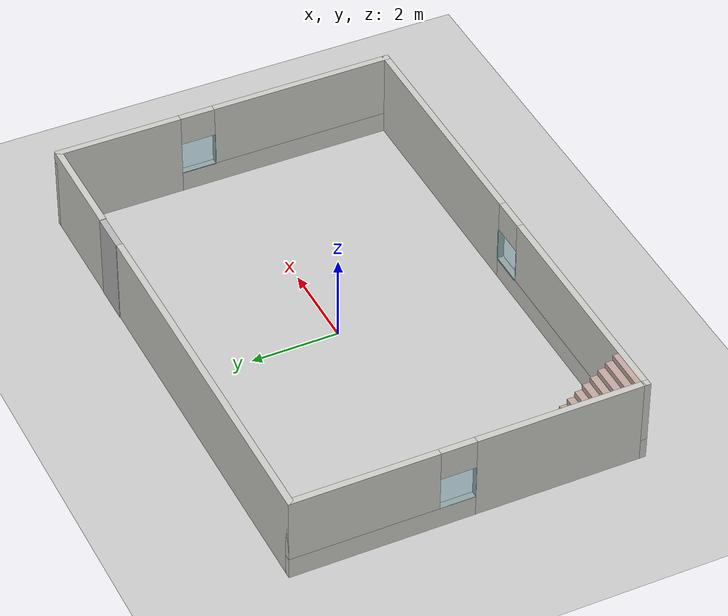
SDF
<sdf version="1.7">
 <world name="default">
  <plugin name="xbot2_clock" filename="libxbot2_gz_clock.so"/>
  <gravity>0 0 -9.81</gravity>
  <model name="ground_plane">
   <static>1</static>
   <link name="link">
    <collision name="collision">
     <geometry><plane><normal>0 0 1</normal><size>100 100</size></plane></geometry>
     <surface><friction><ode><mu>1</mu><mu2>1</mu2></ode></friction></surface>
    </collision>
    <visual name="visual">
     <cast_shadows>0</cast_shadows>
     <geometry><plane><normal>0 0 1</normal><size>100 100</size></plane></geometry>
     <material>
      <script><uri>file://media/materials/scripts/gazebo.material</uri><name>Gazebo/Grey</name></script>
     </material>
    </visual>
   </link>
  </model>
  <light name="sun" type="directional">
   <pose>0 0 10 0 -0 0</pose>
   <diffuse>0.8 0.8 0.8 1</diffuse>
   <specular>0.2 0.2 0.2 1</specular>
   <attenuation>
    <range>1000</range>
    <constant>0.9</constant>
    <linear>0.01</linear>
    <quadratic>0.001</quadratic>
   </attenuation>
   <direction>-0.5 0.1 -0.9</direction>
   <spot><inner_angle>0</inner_angle><outer_angle>0</outer_angle><falloff>0</falloff></spot>
  </light>
  <physics name="update_rate" type="ode">
   <real_time_update_rate>2000</real_time_update_rate>
   <max_step_size>0.00025</max_step_size>
   <max_contacts>5</max_contacts>
   <bullet>
    <solver><iters>100</iters><sor>1.55</sor><type>sequential_impulse</type></solver>
    <constraints>
     <contact_surface_layer>0.2</contact_surface_layer>
     <cfm>0.005</cfm>
     <erp>0.2</erp>
     <split_impulse>1</split_impulse>
     <split_impulse_penetration_threshold>-0.01</split_impulse_penetration_threshold>
    </constraints>
   </bullet>
   <ode>
    <solver>
     <iters>50</iters>
     <sor>1.2</sor>
     <type>quick</type>
     <use_dynamic_moi_rescaling>0</use_dynamic_moi_rescaling>
    </solver>
    <constraints>
     <contact_surface_layer>0.0002</contact_surface_layer>
     <contact_max_correcting_vel>500</contact_max_correcting_vel>
     <cfm>1e-06</cfm>
     <erp>0.3</erp>
    </constraints>
   </ode>
   <real_time_factor>1</real_time_factor>
  </physics>
  <magnetic_field>6e-06 2.3e-05 -4.2e-05</magnetic_field>
  <atmosphere type="adiabatic"/>
  <scene><ambient>0.4 0.4 0.4 1</ambient><background>0.7 0.7 0.7 1</background><shadows>1</shadows></scene>
  <spherical_coordinates>
   <surface_model>EARTH_WGS84</surface_model>
   <latitude_deg>0</latitude_deg>
   <longitude_deg>0</longitude_deg>
   <elevation>0</elevation>
   <heading_deg>0</heading_deg>
  </spherical_coordinates>
  <model name="room3">
   <pose>-0.063361 -0.045319 0 0 -0 0</pose>
   <link name="Stairs_0">
    <visual name="Stairs_0_Visual_0">
     <pose>-5.38821 -1.44096 0.066667 0 -0 0</pose>
     <geometry><box><size>0.930608 0.1686 0.133333</size></box></geometry>
     <material>
      <script><uri>file://media/materials/scripts/gazebo.material</uri><name>Gazebo/Grey</name></script>
      <ambient>0.760784 0.662745 0.627451 1</ambient>
     </material>
     <meta><layer>0</layer></meta>
    </visual>
    <collision name="Stairs_0_Collision_0">
     <geometry><box><size>0.930608 0.1686 0.133333</size></box></geometry>
     <pose>-5.38821 -1.44096 0.066667 0 -0 0</pose>
    </collision>
    <visual name="Stairs_0_Visual_1">
     <pose>-5.38821 -1.60956 0.2 0 -0 0</pose>
     <geometry><box><size>0.930608 0.1686 0.133333</size></box></geometry>
     <material>
      <script><uri>file://media/materials/scripts/gazebo.material</uri><name>Gazebo/Grey</name></script>
      <ambient>0.760784 0.662745 0.627451 1</ambient>
     </material>
     <meta><layer>0</layer></meta>
    </visual>
    <collision name="Stairs_0_Collision_1">
     <geometry><box><size>0.930608 0.1686 0.133333</size></box></geometry>
     <pose>-5.38821 -1.60956 0.2 0 -0 0</pose>
    </collision>
    <visual name="Stairs_0_Visual_2">
     <pose>-5.38821 -1.77816 0.333333 0 -0 0</pose>
     <geometry><box><size>0.930608 0.1686 0.133333</size></box></geometry>
     <material>
      <script><uri>file://media/materials/scripts/gazebo.material</uri><name>Gazebo/Grey</name></script>
      <ambient>0.760784 0.662745 0.627451 1</ambient>
     </material>
     <meta><layer>0</layer></meta>
    </visual>
    <collision name="Stairs_0_Collision_2">
     <geometry><box><size>0.930608 0.1686 0.133333</size></box></geometry>
     <pose>-5.38821 -1.77816 0.333333 0 -0 0</pose>
    </collision>
    <visual name="Stairs_0_Visual_3">
     <pose>-5.38821 -1.94676 0.466667 0 -0 0</pose>
     <geometry><box><size>0.930608 0.1686 0.133333</size></box></geometry>
     <material>
      <script><uri>file://media/materials/scripts/gazebo.material</uri><name>Gazebo/Grey</name></script>
      <ambient>0.760784 0.662745 0.627451 1</ambient>
     </material>
     <meta><layer>0</layer></meta>
    </visual>
    <collision name="Stairs_0_Collision_3">
     <geometry><box><size>0.930608 0.1686 0.133333</size></box></geometry>
     <pose>-5.38821 -1.94676 0.466667 0 -0 0</pose>
    </collision>
    <visual name="Stairs_0_Visual_4">
     <pose>-5.38821 -2.11536 0.6 0 -0 0</pose>
     <geometry><box><size>0.930608 0.1686 0.133333</size></box></geometry>
     <material>
      <script><uri>file://media/materials/scripts/gazebo.material</uri><name>Gazebo/Grey</name></script>
      <ambient>0.760784 0.662745 0.627451 1</ambient>
     </material>
     <meta><layer>0</layer></meta>
    </visual>
    <collision name="Stairs_0_Collision_4">
     <geometry><box><size>0.930608 0.1686 0.133333</size></box></geometry>
     <pose>-5.38821 -2.11536 0.6 0 -0 0</pose>
    </collision>
    <visual name="Stairs_0_Visual_5">
     <pose>-5.38821 -2.28396 0.733333 0 -0 0</pose>
     <geometry><box><size>0.930608 0.1686 0.133333</size></box></geometry>
     <material>
      <script><uri>file://media/materials/scripts/gazebo.material</uri><name>Gazebo/Grey</name></script>
      <ambient>0.760784 0.662745 0.627451 1</ambient>
     </material>
     <meta><layer>0</layer></meta>
    </visual>
    <collision name="Stairs_0_Collision_5">
     <geometry><box><size>0.930608 0.1686 0.133333</size></box></geometry>
     <pose>-5.38821 -2.28396 0.733333 0 -0 0</pose>
    </collision>
    <visual name="Stairs_0_Visual_6">
     <pose>-5.38821 -2.45256 0.866667 0 -0 0</pose>
     <geometry><box><size>0.930608 0.1686 0.133333</size></box></geometry>
     <material>
      <script><uri>file://media/materials/scripts/gazebo.material</uri><name>Gazebo/Grey</name></script>
      <ambient>0.760784 0.662745 0.627451 1</ambient>
     </material>
     <meta><layer>0</layer></meta>
    </visual>
    <collision name="Stairs_0_Collision_6">
     <geometry><box><size>0.930608 0.1686 0.133333</size></box></geometry>
     <pose>-5.38821 -2.45256 0.866667 0 -0 0</pose>
    </collision>
    <visual name="Stairs_0_Visual_7">
     <pose>-5.38821 -2.62116 1 0 -0 0</pose>
     <geometry><box><size>0.930608 0.1686 0.133333</size></box></geometry>
     <material>
      <script><uri>file://media/materials/scripts/gazebo.material</uri><name>Gazebo/Grey</name></script>
      <ambient>0.760784 0.662745 0.627451 1</ambient>
     </material>
     <meta><layer>0</layer></meta>
    </visual>
    <collision name="Stairs_0_Collision_7">
     <geometry><box><size>0.930608 0.1686 0.133333</size></box></geometry>
     <pose>-5.38821 -2.62116 1 0 -0 0</pose>
    </collision>
    <visual name="Stairs_0_Visual_8">
     <pose>-5.38821 -2.78976 1.13333 0 -0 0</pose>
     <geometry><box><size>0.930608 0.1686 0.133333</size></box></geometry>
     <material>
      <script><uri>file://media/materials/scripts/gazebo.material</uri><name>Gazebo/Grey</name></script>
      <ambient>0.760784 0.662745 0.627451 1</ambient>
     </material>
     <meta><layer>0</layer></meta>
    </visual>
    <collision name="Stairs_0_Collision_8">
     <geometry><box><size>0.930608 0.1686 0.133333</size></box></geometry>
     <pose>-5.38821 -2.78976 1.13333 0 -0 0</pose>
    </collision>
    <visual name="Stairs_0_Visual_9">
     <pose>-5.38821 -2.95836 1.26667 0 -0 0</pose>
     <geometry><box><size>0.930608 0.1686 0.133333</size></box></geometry>
     <material>
      <script><uri>file://media/materials/scripts/gazebo.material</uri><name>Gazebo/Grey</name></script>
      <ambient>0.760784 0.662745 0.627451 1</ambient>
     </material>
     <meta><layer>0</layer></meta>
    </visual>
    <collision name="Stairs_0_Collision_9">
     <geometry><box><size>0.930608 0.1686 0.133333</size></box></geometry>
     <pose>-5.38821 -2.95836 1.26667 0 -0 0</pose>
    </collision>
    <visual name="Stairs_0_Visual_10">
     <pose>-5.38821 -3.12696 1.4 0 -0 0</pose>
     <geometry><box><size>0.930608 0.1686 0.133333</size></box></geometry>
     <material>
      <script><uri>file://media/materials/scripts/gazebo.material</uri><name>Gazebo/Grey</name></script>
      <ambient>0.760784 0.662745 0.627451 1</ambient>
     </material>
     <meta><layer>0</layer></meta>
    </visual>
    <collision name="Stairs_0_Collision_10">
     <geometry><box><size>0.930608 0.1686 0.133333</size></box></geometry>
     <pose>-5.38821 -3.12696 1.4 0 -0 0</pose>
    </collision>
    <visual name="Stairs_0_Visual_11">
     <pose>-5.38821 -3.29556 1.53333 0 -0 0</pose>
     <geometry><box><size>0.930608 0.1686 0.133333</size></box></geometry>
     <material>
      <script><uri>file://media/materials/scripts/gazebo.material</uri><name>Gazebo/Grey</name></script>
      <ambient>0.760784 0.662745 0.627451 1</ambient>
     </material>
     <meta><layer>0</layer></meta>
    </visual>
    <collision name="Stairs_0_Collision_11">
     <geometry><box><size>0.930608 0.1686 0.133333</size></box></geometry>
     <pose>-5.38821 -3.29556 1.53333 0 -0 0</pose>
    </collision>
    <visual name="Stairs_0_Visual_12">
     <pose>-5.38821 -3.46416 1.66667 0 -0 0</pose>
     <geometry><box><size>0.930608 0.1686 0.133333</size></box></geometry>
     <material>
      <script><uri>file://media/materials/scripts/gazebo.material</uri><name>Gazebo/Grey</name></script>
      <ambient>0.760784 0.662745 0.627451 1</ambient>
     </material>
     <meta><layer>0</layer></meta>
    </visual>
    <collision name="Stairs_0_Collision_12">
     <geometry><box><size>0.930608 0.1686 0.133333</size></box></geometry>
     <pose>-5.38821 -3.46416 1.66667 0 -0 0</pose>
    </collision>
    <visual name="Stairs_0_Visual_13">
     <pose>-5.38821 -3.63276 1.8 0 -0 0</pose>
     <geometry><box><size>0.930608 0.1686 0.133333</size></box></geometry>
     <material>
      <script><uri>file://media/materials/scripts/gazebo.material</uri><name>Gazebo/Grey</name></script>
      <ambient>0.760784 0.662745 0.627451 1</ambient>
     </material>
     <meta><layer>0</layer></meta>
    </visual>
    <collision name="Stairs_0_Collision_13">
     <geometry><box><size>0.930608 0.1686 0.133333</size></box></geometry>
     <pose>-5.38821 -3.63276 1.8 0 -0 0</pose>
    </collision>
    <visual name="Stairs_0_Visual_14">
     <pose>-5.38821 -3.80136 1.93333 0 -0 0</pose>
     <geometry><box><size>0.930608 0.1686 0.133333</size></box></geometry>
     <material>
      <script><uri>file://media/materials/scripts/gazebo.material</uri><name>Gazebo/Grey</name></script>
      <ambient>0.760784 0.662745 0.627451 1</ambient>
     </material>
     <meta><layer>0</layer></meta>
    </visual>
    <collision name="Stairs_0_Collision_14">
     <geometry><box><size>0.930608 0.1686 0.133333</size></box></geometry>
     <pose>-5.38821 -3.80136 1.93333 0 -0 0</pose>
    </collision>
   </link>
   <link name="Wall_10">
    <pose>-5.925 0 0 0 -0 1.5708</pose>
    <visual name="Wall_10_Visual_0">
     <pose>-2.05335 0 1 0 -0 0</pose>
     <geometry><box><size>3.8933 0.15 2</size></box></geometry>
     <material>
      <script><uri>file://media/materials/scripts/gazebo.material</uri><name>Gazebo/CeilingTiled</name></script>
      <ambient>1 1 1 1</ambient>
     </material>
     <meta><layer>0</layer></meta>
    </visual>
    <collision name="Wall_10_Collision_0">
     <geometry><box><size>3.8933 0.15 2</size></box></geometry>
     <pose>-2.05335 0 1 0 -0 0</pose>
    </collision>
    <visual name="Wall_10_Visual_1">
     <pose>1.94665 0 0.25 0 -0 0</pose>
     <geometry><box><size>4.1067 0.15 0.5</size></box></geometry>
     <material>
      <script><uri>file://media/materials/scripts/gazebo.material</uri><name>Gazebo/CeilingTiled</name></script>
      <ambient>1 1 1 1</ambient>
     </material>
     <meta><layer>0</layer></meta>
    </visual>
    <collision name="Wall_10_Collision_1">
     <geometry><box><size>4.1067 0.15 0.5</size></box></geometry>
     <pose>1.94665 0 0.25 0 -0 0</pose>
    </collision>
    <visual name="Wall_10_Visual_2">
     <pose>2.34665 0 1.25 0 -0 0</pose>
     <geometry><box><size>3.3067 0.15 1.5</size></box></geometry>
     <material>
      <script><uri>file://media/materials/scripts/gazebo.material</uri><name>Gazebo/CeilingTiled</name></script>
      <ambient>1 1 1 1</ambient>
     </material>
     <meta><layer>0</layer></meta>
    </visual>
    <collision name="Wall_10_Collision_2">
     <geometry><box><size>3.3067 0.15 1.5</size></box></geometry>
     <pose>2.34665 0 1.25 0 -0 0</pose>
    </collision>
    <visual name="Wall_10_Visual_3">
     <pose>0.293299 0 1.65 0 -0 0</pose>
     <geometry><box><size>0.8 0.15 0.7</size></box></geometry>
     <material>
      <script><uri>file://media/materials/scripts/gazebo.material</uri><name>Gazebo/CeilingTiled</name></script>
      <ambient>1 1 1 1</ambient>
     </material>
     <meta><layer>0</layer></meta>
    </visual>
    <collision name="Wall_10_Collision_3">
     <geometry><box><size>0.8 0.15 0.7</size></box></geometry>
     <pose>0.293299 0 1.65 0 -0 0</pose>
    </collision>
   </link>
   <link name="Wall_6">
    <pose>0 3.925 0 0 -0 0</pose>
    <visual name="Wall_6_Visual_0">
     <pose>-1.72591 0 1 0 -0 0</pose>
     <geometry><box><size>8.54818 0.15 2</size></box></geometry>
     <material>
      <script><uri>file://media/materials/scripts/gazebo.material</uri><name>Gazebo/CeilingTiled</name></script>
      <ambient>1 1 1 1</ambient>
     </material>
     <meta><layer>0</layer></meta>
    </visual>
    <collision name="Wall_6_Collision_0">
     <geometry><box><size>8.54818 0.15 2</size></box></geometry>
     <pose>-1.72591 0 1 0 -0 0</pose>
    </collision>
    <visual name="Wall_6_Visual_1">
     <pose>4.72409 0 1 0 -0 0</pose>
     <geometry><box><size>2.55182 0.15 2</size></box></geometry>
     <material>
      <script><uri>file://media/materials/scripts/gazebo.material</uri><name>Gazebo/CeilingTiled</name></script>
      <ambient>1 1 1 1</ambient>
     </material>
     <meta><layer>0</layer></meta>
    </visual>
    <collision name="Wall_6_Collision_1">
     <geometry><box><size>2.55182 0.15 2</size></box></geometry>
     <pose>4.72409 0 1 0 -0 0</pose>
    </collision>
   </link>
   <link name="Wall_7">
    <pose>5.925 0 0 0 -0 -1.5708</pose>
    <visual name="Wall_7_Visual_0">
     <pose>-2.54326 0 1 0 -0 0</pose>
     <geometry><box><size>2.91348 0.15 2</size></box></geometry>
     <material>
      <script><uri>file://media/materials/scripts/gazebo.material</uri><name>Gazebo/CeilingTiled</name></script>
      <ambient>1 1 1 1</ambient>
     </material>
     <meta><layer>0</layer></meta>
    </visual>
    <collision name="Wall_7_Collision_0">
     <geometry><box><size>2.91348 0.15 2</size></box></geometry>
     <pose>-2.54326 0 1 0 -0 0</pose>
    </collision>
    <visual name="Wall_7_Visual_1">
     <pose>1.45674 0 0.25 0 -0 0</pose>
     <geometry><box><size>5.08652 0.15 0.5</size></box></geometry>
     <material>
      <script><uri>file://media/materials/scripts/gazebo.material</uri><name>Gazebo/CeilingTiled</name></script>
      <ambient>1 1 1 1</ambient>
     </material>
     <meta><layer>0</layer></meta>
    </visual>
    <collision name="Wall_7_Collision_1">
     <geometry><box><size>5.08652 0.15 0.5</size></box></geometry>
     <pose>1.45674 0 0.25 0 -0 0</pose>
    </collision>
    <visual name="Wall_7_Visual_2">
     <pose>1.85674 0 1.25 0 -0 0</pose>
     <geometry><box><size>4.28652 0.15 1.5</size></box></geometry>
     <material>
      <script><uri>file://media/materials/scripts/gazebo.material</uri><name>Gazebo/CeilingTiled</name></script>
      <ambient>1 1 1 1</ambient>
     </material>
     <meta><layer>0</layer></meta>
    </visual>
    <collision name="Wall_7_Collision_2">
     <geometry><box><size>4.28652 0.15 1.5</size></box></geometry>
     <pose>1.85674 0 1.25 0 -0 0</pose>
    </collision>
    <visual name="Wall_7_Visual_3">
     <pose>-0.68652 0 1.65 0 -0 0</pose>
     <geometry><box><size>0.8 0.15 0.7</size></box></geometry>
     <material>
      <script><uri>file://media/materials/scripts/gazebo.material</uri><name>Gazebo/CeilingTiled</name></script>
      <ambient>1 1 1 1</ambient>
     </material>
     <meta><layer>0</layer></meta>
    </visual>
    <collision name="Wall_7_Collision_3">
     <geometry><box><size>0.8 0.15 0.7</size></box></geometry>
     <pose>-0.68652 0 1.65 0 -0 0</pose>
    </collision>
   </link>
   <link name="Wall_9">
    <pose>0 -3.925 0 0 -0 3.14159</pose>
    <visual name="Wall_9_Visual_0">
     <pose>-3.14857 0 1 0 -0 0</pose>
     <geometry><box><size>5.70287 0.15 2</size></box></geometry>
     <material>
      <script><uri>file://media/materials/scripts/gazebo.material</uri><name>Gazebo/CeilingTiled</name></script>
      <ambient>1 1 1 1</ambient>
     </material>
     <meta><layer>0</layer></meta>
    </visual>
    <collision name="Wall_9_Collision_0">
     <geometry><box><size>5.70287 0.15 2</size></box></geometry>
     <pose>-3.14857 0 1 0 -0 0</pose>
    </collision>
    <visual name="Wall_9_Visual_1">
     <pose>2.85143 0 0.25 0 -0 0</pose>
     <geometry><box><size>6.29713 0.15 0.5</size></box></geometry>
     <material>
      <script><uri>file://media/materials/scripts/gazebo.material</uri><name>Gazebo/CeilingTiled</name></script>
      <ambient>1 1 1 1</ambient>
     </material>
     <meta><layer>0</layer></meta>
    </visual>
    <collision name="Wall_9_Collision_1">
     <geometry><box><size>6.29713 0.15 0.5</size></box></geometry>
     <pose>2.85143 0 0.25 0 -0 0</pose>
    </collision>
    <visual name="Wall_9_Visual_2">
     <pose>3.25143 0 1.25 0 -0 0</pose>
     <geometry><box><size>5.49713 0.15 1.5</size></box></geometry>
     <material>
      <script><uri>file://media/materials/scripts/gazebo.material</uri><name>Gazebo/CeilingTiled</name></script>
      <ambient>1 1 1 1</ambient>
     </material>
     <meta><layer>0</layer></meta>
    </visual>
    <collision name="Wall_9_Collision_2">
     <geometry><box><size>5.49713 0.15 1.5</size></box></geometry>
     <pose>3.25143 0 1.25 0 -0 0</pose>
    </collision>
    <visual name="Wall_9_Visual_3">
     <pose>0.102868 0 1.65 0 -0 0</pose>
     <geometry><box><size>0.8 0.15 0.7</size></box></geometry>
     <material>
      <script><uri>file://media/materials/scripts/gazebo.material</uri><name>Gazebo/CeilingTiled</name></script>
      <ambient>1 1 1 1</ambient>
     </material>
     <meta><layer>0</layer></meta>
    </visual>
    <collision name="Wall_9_Collision_3">
     <geometry><box><size>0.8 0.15 0.7</size></box></geometry>
     <pose>0.102868 0 1.65 0 -0 0</pose>
    </collision>
   </link>
   <static>1</static>
  </model>
  <model name="window">
   <link name="link_2">
    <visual name="visual">
     <pose>0 0 0.9 0 -0 0</pose>
     <geometry><box><size>0.8 0.15 0.8</size></box></geometry>
     <material>
      <lighting>1</lighting>
      <ambient>0.1 0.5 0.6 1</ambient>
      <diffuse>0.1 0.5 0.6 1</diffuse>
      <specular>0.01 0.01 0.01 1</specular>
      <emissive>0 0 0 1</emissive>
     </material>
     <transparency>0.7</transparency>
    </visual>
    <collision name="collision">
     <pose>0 0 0.9 0 -0 0</pose>
     <geometry><box><size>0.8 0.15 0.8</size></box></geometry>
    </collision>
   </link>
   <static>1</static>
   <pose>-0.184582 -3.94895 0 0 -0 0</pose>
  </model>
  <model name="window_0">
   <link name="link_2">
    <visual name="visual">
     <pose>0 0 0.9 0 -0 0</pose>
     <geometry><box><size>0.8 0.15 0.8</size></box></geometry>
     <material>
      <lighting>1</lighting>
      <ambient>0.1 0.5 0.6 1</ambient>
      <diffuse>0.1 0.5 0.6 1</diffuse>
      <specular>0.01 0.01 0.01 1</specular>
      <emissive>0 0 0 1</emissive>
     </material>
     <transparency>0.7</transparency>
    </visual>
    <collision name="collision">
     <pose>0 0 0.9 0 -0 0</pose>
     <geometry><box><size>0.8 0.15 0.8</size></box></geometry>
    </collision>
   </link>
   <static>1</static>
   <pose>-5.99135 0.256438 0 0 0 -1.5793</pose>
  </model>
  <model name="window_1">
   <link name="link_2">
    <visual name="visual">
     <pose>0 0 0.9 0 -0 0</pose>
     <geometry><box><size>0.8 0.15 0.8</size></box></geometry>
     <material>
      <lighting>1</lighting>
      <ambient>0.1 0.5 0.6 1</ambient>
      <diffuse>0.1 0.5 0.6 1</diffuse>
      <specular>0.01 0.01 0.01 1</specular>
      <emissive>0 0 0 1</emissive>
     </material>
     <transparency>0.7</transparency>
    </visual>
    <collision name="collision">
     <pose>0 0 0.9 0 -0 0</pose>
     <geometry><box><size>0.8 0.15 0.8</size></box></geometry>
    </collision>
   </link>
   <static>1</static>
   <pose>5.84486 0.640634 0 0 0 -1.57405</pose>
  </model>
  <model name="door">
   <link name="link_0">
    <visual name="visual">
     <pose>0 0 1 0 -0 0</pose>
     <geometry><box><size>0.9 0.15 2</size></box></geometry>
     <material>
      <script>
       <uri>model://door/materials/scripts</uri>
       <uri>model://door/materials/textures</uri>
       <name>door</name>
      </script>
     </material>
    </visual>
    <collision name="collision">
     <pose>0 0 1 0 -0 0</pose>
     <geometry><box><size>0.9 0.15 2</size></box></geometry>
    </collision>
   </link>
   <static>1</static>
   <pose>2.92434 3.88932 0 0 -0 0</pose>
  </model>
 </world>
</sdf>
